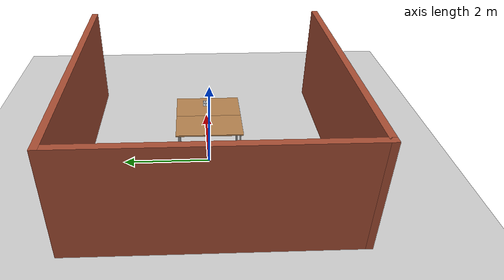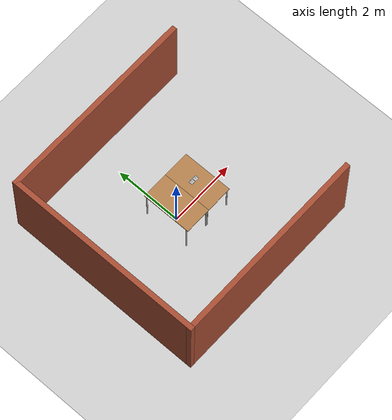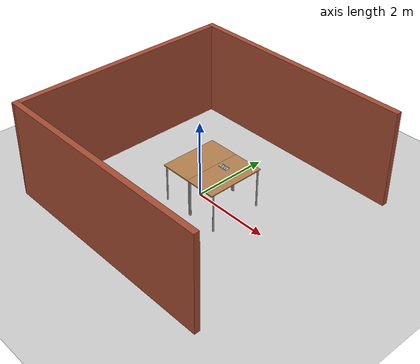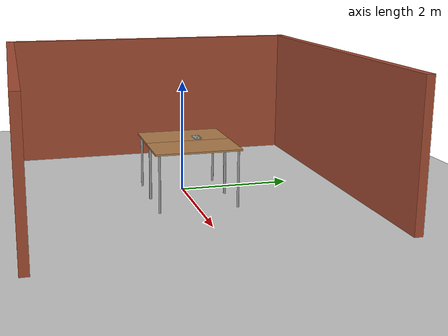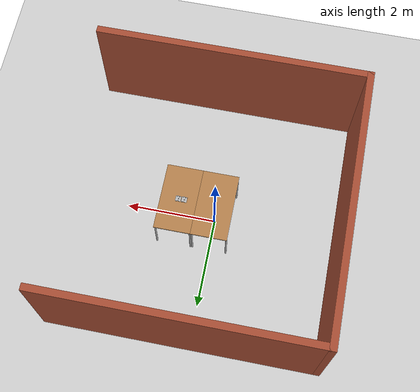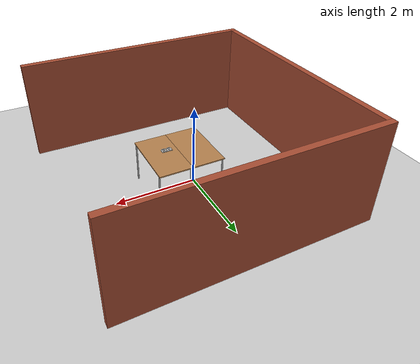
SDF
<sdf version="1.7">
 <world name="default">
  <light name="sun" type="directional">
   <pose>0 0 10 0 -0 0</pose>
   <diffuse>0.8 0.8 0.8 1</diffuse>
   <specular>0.2 0.2 0.2 1</specular>
   <attenuation>
    <range>1000</range>
    <constant>0.9</constant>
    <linear>0.01</linear>
    <quadratic>0.001</quadratic>
   </attenuation>
   <direction>-0.5 0.1 -0.9</direction>
   <spot><inner_angle>0</inner_angle><outer_angle>0</outer_angle><falloff>0</falloff></spot>
  </light>
  <model name="ground_plane">
   <static>1</static>
   <link name="link">
    <collision name="collision">
     <geometry><plane><normal>0 0 1</normal><size>100 100</size></plane></geometry>
     <surface><friction><ode><mu>100</mu><mu2>50</mu2></ode></friction></surface>
    </collision>
    <visual name="visual">
     <cast_shadows>0</cast_shadows>
     <geometry><plane><normal>0 0 1</normal><size>100 100</size></plane></geometry>
     <material>
      <script><uri>file://media/materials/scripts/gazebo.material</uri><name>Gazebo/Grey</name></script>
     </material>
    </visual>
   </link>
  </model>
  <gravity>0 0 -9.8</gravity>
  <magnetic_field>6e-06 2.3e-05 -4.2e-05</magnetic_field>
  <atmosphere type="adiabatic"/>
  <physics type="ode">
   <max_step_size>0.001</max_step_size>
   <real_time_factor>1</real_time_factor>
   <real_time_update_rate>1000</real_time_update_rate>
  </physics>
  <scene><ambient>0.4 0.4 0.4 1</ambient><background>0.7 0.7 0.7 1</background><shadows>1</shadows></scene>
  <audio><device>default</device></audio>
  <spherical_coordinates>
   <surface_model>EARTH_WGS84</surface_model>
   <latitude_deg>0</latitude_deg>
   <longitude_deg>0</longitude_deg>
   <elevation>0</elevation>
   <heading_deg>0</heading_deg>
  </spherical_coordinates>
  <model name="table">
   <static>1</static>
   <link name="link">
    <collision name="surface">
     <pose>0 0 1 0 -0 0</pose>
     <geometry><box><size>1.5 0.8 0.03</size></box></geometry>
     <surface><friction><ode><mu>0.6</mu><mu2>0.6</mu2></ode></friction></surface>
    </collision>
    <visual name="visual1">
     <pose>0 0 1 0 -0 0</pose>
     <geometry><box><size>1.5 0.8 0.03</size></box></geometry>
     <material>
      <script><uri>file://media/materials/scripts/gazebo.material</uri><name>Gazebo/Wood</name></script>
     </material>
    </visual>
    <collision name="front_left_leg">
     <pose>0.68 0.38 0.5 0 -0 0</pose>
     <geometry><cylinder><radius>0.02</radius><length>1</length></cylinder></geometry>
    </collision>
    <visual name="front_left_leg_visual">
     <pose>0.68 0.38 0.5 0 -0 0</pose>
     <geometry><cylinder><radius>0.02</radius><length>1</length></cylinder></geometry>
     <material>
      <script><uri>file://media/materials/scripts/gazebo.material</uri><name>Gazebo/Grey</name></script>
     </material>
    </visual>
    <collision name="front_right_leg">
     <pose>0.68 -0.38 0.5 0 -0 0</pose>
     <geometry><cylinder><radius>0.02</radius><length>1</length></cylinder></geometry>
    </collision>
    <visual name="front_right_leg_visual">
     <pose>0.68 -0.38 0.5 0 -0 0</pose>
     <geometry><cylinder><radius>0.02</radius><length>1</length></cylinder></geometry>
     <material>
      <script><uri>file://media/materials/scripts/gazebo.material</uri><name>Gazebo/Grey</name></script>
     </material>
    </visual>
    <collision name="back_right_leg">
     <pose>-0.68 -0.38 0.5 0 -0 0</pose>
     <geometry><cylinder><radius>0.02</radius><length>1</length></cylinder></geometry>
    </collision>
    <visual name="back_right_leg_visual">
     <pose>-0.68 -0.38 0.5 0 -0 0</pose>
     <geometry><cylinder><radius>0.02</radius><length>1</length></cylinder></geometry>
     <material>
      <script><uri>file://media/materials/scripts/gazebo.material</uri><name>Gazebo/Grey</name></script>
     </material>
    </visual>
    <collision name="back_left_leg">
     <pose>-0.68 0.38 0.5 0 -0 0</pose>
     <geometry><cylinder><radius>0.02</radius><length>1</length></cylinder></geometry>
    </collision>
    <visual name="back_left_leg_visual">
     <pose>-0.68 0.38 0.5 0 -0 0</pose>
     <geometry><cylinder><radius>0.02</radius><length>1</length></cylinder></geometry>
     <material>
      <script><uri>file://media/materials/scripts/gazebo.material</uri><name>Gazebo/Grey</name></script>
     </material>
    </visual>
   </link>
   <pose>0 0 0 0 -0 1.5708</pose>
  </model>
  <model name="table_0">
   <static>1</static>
   <link name="link">
    <collision name="surface">
     <pose>0 0 1 0 -0 0</pose>
     <geometry><box><size>1.5 0.8 0.03</size></box></geometry>
     <surface><friction><ode><mu>0.6</mu><mu2>0.6</mu2></ode></friction></surface>
    </collision>
    <visual name="visual1">
     <pose>0 0 1 0 -0 0</pose>
     <geometry><box><size>1.5 0.8 0.03</size></box></geometry>
     <material>
      <script><uri>file://media/materials/scripts/gazebo.material</uri><name>Gazebo/Wood</name></script>
     </material>
    </visual>
    <collision name="front_left_leg">
     <pose>0.68 0.38 0.5 0 -0 0</pose>
     <geometry><cylinder><radius>0.02</radius><length>1</length></cylinder></geometry>
    </collision>
    <visual name="front_left_leg_visual">
     <pose>0.68 0.38 0.5 0 -0 0</pose>
     <geometry><cylinder><radius>0.02</radius><length>1</length></cylinder></geometry>
     <material>
      <script><uri>file://media/materials/scripts/gazebo.material</uri><name>Gazebo/Grey</name></script>
     </material>
    </visual>
    <collision name="front_right_leg">
     <pose>0.68 -0.38 0.5 0 -0 0</pose>
     <geometry><cylinder><radius>0.02</radius><length>1</length></cylinder></geometry>
    </collision>
    <visual name="front_right_leg_visual">
     <pose>0.68 -0.38 0.5 0 -0 0</pose>
     <geometry><cylinder><radius>0.02</radius><length>1</length></cylinder></geometry>
     <material>
      <script><uri>file://media/materials/scripts/gazebo.material</uri><name>Gazebo/Grey</name></script>
     </material>
    </visual>
    <collision name="back_right_leg">
     <pose>-0.68 -0.38 0.5 0 -0 0</pose>
     <geometry><cylinder><radius>0.02</radius><length>1</length></cylinder></geometry>
    </collision>
    <visual name="back_right_leg_visual">
     <pose>-0.68 -0.38 0.5 0 -0 0</pose>
     <geometry><cylinder><radius>0.02</radius><length>1</length></cylinder></geometry>
     <material>
      <script><uri>file://media/materials/scripts/gazebo.material</uri><name>Gazebo/Grey</name></script>
     </material>
    </visual>
    <collision name="back_left_leg">
     <pose>-0.68 0.38 0.5 0 -0 0</pose>
     <geometry><cylinder><radius>0.02</radius><length>1</length></cylinder></geometry>
    </collision>
    <visual name="back_left_leg_visual">
     <pose>-0.68 0.38 0.5 0 -0 0</pose>
     <geometry><cylinder><radius>0.02</radius><length>1</length></cylinder></geometry>
     <material>
      <script><uri>file://media/materials/scripts/gazebo.material</uri><name>Gazebo/Grey</name></script>
     </material>
    </visual>
   </link>
   <pose>0.8 0 0 0 -0 1.5708</pose>
  </model>
  <model name="building">
   <pose>0.172106 -0.01584 0 0 -0 0</pose>
   <link name="Wall_14">
    <collision name="Wall_14_Collision">
     <geometry><box><size>6 0.15 2.5</size></box></geometry>
     <pose>0 0 1.25 0 -0 0</pose>
    </collision>
    <visual name="Wall_14_Visual">
     <pose>0 0 1.25 0 -0 0</pose>
     <geometry><box><size>6 0.15 2.5</size></box></geometry>
     <material>
      <script><uri>file://media/materials/scripts/gazebo.material</uri><name>Gazebo/Bricks</name></script>
      <ambient>1 1 1 1</ambient>
     </material>
     <meta><layer>0</layer></meta>
    </visual>
    <pose>0 2.925 0 0 -0 0</pose>
   </link>
   <link name="Wall_16">
    <collision name="Wall_16_Collision">
     <geometry><box><size>6 0.15 2.5</size></box></geometry>
     <pose>0 0 1.25 0 -0 0</pose>
    </collision>
    <visual name="Wall_16_Visual">
     <pose>0 0 1.25 0 -0 0</pose>
     <geometry><box><size>6 0.15 2.5</size></box></geometry>
     <material>
      <script><uri>file://media/materials/scripts/gazebo.material</uri><name>Gazebo/Bricks</name></script>
      <ambient>1 1 1 1</ambient>
     </material>
     <meta><layer>0</layer></meta>
    </visual>
    <pose>0 -2.925 0 0 -0 0</pose>
   </link>
   <link name="Wall_9">
    <collision name="Wall_9_Collision">
     <geometry><box><size>6 0.15 2.5</size></box></geometry>
     <pose>0 0 1.25 0 -0 0</pose>
    </collision>
    <visual name="Wall_9_Visual">
     <pose>0 0 1.25 0 -0 0</pose>
     <geometry><box><size>6 0.15 2.5</size></box></geometry>
     <material>
      <script><uri>file://media/materials/scripts/gazebo.material</uri><name>Gazebo/Bricks</name></script>
      <ambient>1 1 1 1</ambient>
     </material>
     <meta><layer>0</layer></meta>
    </visual>
    <pose>-2.925 0 0 0 -0 1.5708</pose>
   </link>
   <static>1</static>
  </model>
  <model name="ateo">
   <pose>0.6 0 1.04 0 0 0</pose>
   <link name="link">
    <inertial>
     <pose>0.121281 0.062056 0.115541 0 0 0</pose>
     <mass>0.8446</mass>
     <inertia>
      <ixx>1.225612e-03</ixx>
      <ixy>1.207283e-04</ixy>
      <ixz>3.276762e-05</ixz>
      <iyy>4.418758e-03</iyy>
      <iyz>-1.262834e-05</iyz>
      <izz>5.586897e-03</izz>
     </inertia>
    </inertial>
    <visual name="visual">
     <geometry>
      <mesh>
       <uri>file:///home/zhibang22/projects/gazebo_ws/tooling_parts/ateo.stl</uri>
       <scale>0.001 0.001 0.001</scale>
      </mesh>
     </geometry>
    </visual>
    <collision name="collision">
     <geometry>
      <mesh>
       <uri>file:///home/zhibang22/projects/gazebo_ws/tooling_parts/ateo.stl</uri>
       <scale>0.001 0.001 0.001</scale>
      </mesh>
     </geometry>
    </collision>
   </link>
   <static>0</static>
  </model>
  <model name="g0101">
   <pose>0.6 0 1.04 0 0 0</pose>
   <link name="link">
    <inertial>
     <pose>0.060839 0.060523 0.112492 0 0 0</pose>
     <mass>0.3079</mass>
     <inertia>
      <ixx>3.682833e-04</ixx>
      <ixy>-7.284331e-14</ixy>
      <ixz>9.581626e-15</ixz>
      <iyy>3.734749e-04</iyy>
      <iyz>-5.319894e-08</iyz>
      <izz>7.384854e-04</izz>
     </inertia>
    </inertial>
    <visual name="visual">
     <geometry>
      <mesh>
       <uri>file:///home/zhibang22/projects/gazebo_ws/tooling_parts/g0101.STL</uri>
       <scale>0.001 0.001 0.001</scale>
      </mesh>
     </geometry>
    </visual>
    <collision name="collision">
     <geometry>
      <mesh>
       <uri>file:///home/zhibang22/projects/gazebo_ws/tooling_parts/g0101.STL</uri>
       <scale>0.001 0.001 0.001</scale>
      </mesh>
     </geometry>
    </collision>
   </link>
   <static>0</static>
  </model>
  <model name="g0201">
   <pose>0.6 0 1.04 0 0 0</pose>
   <link name="link">
    <inertial>
     <pose>0.035839 0.111555 0.121577 0 0 0</pose>
     <mass>0.0017</mass>
     <inertia>
      <ixx>3.445355e-08</ixx>
      <ixy>5.947217e-14</ixy>
      <ixz>2.858178e-16</ixz>
      <iyy>3.490797e-08</iyy>
      <iyz>1.747671e-16</iyz>
      <izz>1.359738e-08</izz>
     </inertia>
    </inertial>
    <visual name="visual">
     <geometry>
      <mesh>
       <uri>file:///home/zhibang22/projects/gazebo_ws/tooling_parts/g0201.STL</uri>
       <scale>0.001 0.001 0.001</scale>
      </mesh>
     </geometry>
    </visual>
    <collision name="collision">
     <geometry>
      <mesh>
       <uri>file:///home/zhibang22/projects/gazebo_ws/tooling_parts/g0201.STL</uri>
       <scale>0.001 0.001 0.001</scale>
      </mesh>
     </geometry>
    </collision>
   </link>
   <static>0</static>
  </model>
  <model name="g0203">
   <pose>0.6 0 1.04 0 0 0</pose>
   <link name="link">
    <inertial>
     <pose>0.060839 0.060555 0.121577 0 0 0</pose>
     <mass>0.0017</mass>
     <inertia>
      <ixx>3.445355e-08</ixx>
      <ixy>5.910511e-14</ixy>
      <ixz>1.516769e-15</ixz>
      <iyy>3.490797e-08</iyy>
      <iyz>1.056238e-15</iyz>
      <izz>1.359738e-08</izz>
     </inertia>
    </inertial>
    <visual name="visual">
     <geometry>
      <mesh>
       <uri>file:///home/zhibang22/projects/gazebo_ws/tooling_parts/g0203.STL</uri>
       <scale>0.001 0.001 0.001</scale>
      </mesh>
     </geometry>
    </visual>
    <collision name="collision">
     <geometry>
      <mesh>
       <uri>file:///home/zhibang22/projects/gazebo_ws/tooling_parts/g0203.STL</uri>
       <scale>0.001 0.001 0.001</scale>
      </mesh>
     </geometry>
    </collision>
   </link>
   <static>0</static>
  </model>
  <model name="g0204">
   <pose>0.6 0 1.04 0 0 0</pose>
   <link name="link">
    <inertial>
     <pose>0.085839 0.111555 0.121577 0 0 0</pose>
     <mass>0.0017</mass>
     <inertia>
      <ixx>3.445356e-08</ixx>
      <ixy>5.915263e-14</ixy>
      <ixz>8.103467e-16</ixz>
      <iyy>3.490797e-08</iyy>
      <iyz>1.863271e-16</iyz>
      <izz>1.359738e-08</izz>
     </inertia>
    </inertial>
    <visual name="visual">
     <geometry>
      <mesh>
       <uri>file:///home/zhibang22/projects/gazebo_ws/tooling_parts/g0204.STL</uri>
       <scale>0.001 0.001 0.001</scale>
      </mesh>
     </geometry>
    </visual>
    <collision name="collision">
     <geometry>
      <mesh>
       <uri>file:///home/zhibang22/projects/gazebo_ws/tooling_parts/g0204.STL</uri>
       <scale>0.001 0.001 0.001</scale>
      </mesh>
     </geometry>
    </collision>
   </link>
   <static>0</static>
  </model>
  <model name="g0301">
   <pose>0.6 0 1.04 0 0 0</pose>
   <link name="link">
    <inertial>
     <pose>0.060839 0.060555 0.121975 0 0 0</pose>
     <mass>0.0023</mass>
     <inertia>
      <ixx>5.419094e-08</ixx>
      <ixy>1.259586e-16</ixy>
      <ixz>-6.752853e-14</ixz>
      <iyy>5.419094e-08</iyy>
      <iyz>-2.256899e-13</iyz>
      <izz>2.431805e-08</izz>
     </inertia>
    </inertial>
    <visual name="visual">
     <geometry>
      <mesh>
       <uri>file:///home/zhibang22/projects/gazebo_ws/tooling_parts/g0301.STL</uri>
       <scale>0.001 0.001 0.001</scale>
      </mesh>
     </geometry>
    </visual>
    <collision name="collision">
     <geometry>
      <mesh>
       <uri>file:///home/zhibang22/projects/gazebo_ws/tooling_parts/g0301.STL</uri>
       <scale>0.001 0.001 0.001</scale>
      </mesh>
     </geometry>
    </collision>
   </link>
   <static>0</static>
  </model>
  <model name="g0401">
   <pose>0.6 0 1.04 0 0 0</pose>
   <link name="link">
    <inertial>
     <pose>0.060839 0.009555 0.121940 0 0 0</pose>
     <mass>0.0051</mass>
     <inertia>
      <ixx>1.162939e-07</ixx>
      <ixy>2.096388e-13</ixy>
      <ixz>8.919123e-16</ixz>
      <iyy>2.088920e-07</iyy>
      <iyz>2.539362e-16</iyz>
      <izz>1.413710e-07</izz>
     </inertia>
    </inertial>
    <visual name="visual">
     <geometry>
      <mesh>
       <uri>file:///home/zhibang22/projects/gazebo_ws/tooling_parts/g0401.STL</uri>
       <scale>0.001 0.001 0.001</scale>
      </mesh>
     </geometry>
    </visual>
    <collision name="collision">
     <geometry>
      <mesh>
       <uri>file:///home/zhibang22/projects/gazebo_ws/tooling_parts/g0401.STL</uri>
       <scale>0.001 0.001 0.001</scale>
      </mesh>
     </geometry>
    </collision>
   </link>
   <static>0</static>
  </model>
  <model name="g0501">
   <pose>0.6 0 1.04 0 0 0</pose>
   <link name="link">
    <inertial>
     <pose>0.060839 0.111555 0.124000 0 0 0</pose>
     <mass>0.0408</mass>
     <inertia>
      <ixx>1.697188e-06</ixx>
      <ixy>-3.188946e-11</ixy>
      <ixz>8.431507e-14</ixz>
      <iyy>1.626952e-05</iyy>
      <iyz>1.832664e-15</iyz>
      <izz>1.643744e-05</izz>
     </inertia>
    </inertial>
    <visual name="visual">
     <geometry>
      <mesh>
       <uri>file:///home/zhibang22/projects/gazebo_ws/tooling_parts/g0501.STL</uri>
       <scale>0.001 0.001 0.001</scale>
      </mesh>
     </geometry>
    </visual>
    <collision name="collision">
     <geometry>
      <mesh>
       <uri>file:///home/zhibang22/projects/gazebo_ws/tooling_parts/g0501.STL</uri>
       <scale>0.001 0.001 0.001</scale>
      </mesh>
     </geometry>
    </collision>
   </link>
   <static>0</static>
  </model>
  <model name="g0601">
   <pose>0.6 0 1.04 0 0 0</pose>
   <link name="link">
    <inertial>
     <pose>0.060839 0.060555 0.124000 0 0 0</pose>
     <mass>0.0228</mass>
     <inertia>
      <ixx>9.456258e-07</ixx>
      <ixy>-1.035972e-10</ixy>
      <ixz>2.298131e-13</ixz>
      <iyy>3.745820e-06</iyy>
      <iyz>1.857071e-15</iyz>
      <izz>3.837297e-06</izz>
     </inertia>
    </inertial>
    <visual name="visual">
     <geometry>
      <mesh>
       <uri>file:///home/zhibang22/projects/gazebo_ws/tooling_parts/g0601.STL</uri>
       <scale>0.001 0.001 0.001</scale>
      </mesh>
     </geometry>
    </visual>
    <collision name="collision">
     <geometry>
      <mesh>
       <uri>file:///home/zhibang22/projects/gazebo_ws/tooling_parts/g0601.STL</uri>
       <scale>0.001 0.001 0.001</scale>
      </mesh>
     </geometry>
    </collision>
   </link>
   <static>0</static>
  </model>
  <model name="g0701">
   <pose>0.6 0 1.04 0 0 0</pose>
   <link name="link">
    <inertial>
     <pose>0.060839 0.009555 0.124000 0 0 0</pose>
     <mass>0.0377</mass>
     <inertia>
      <ixx>1.553356e-06</ixx>
      <ixy>6.204517e-11</ixy>
      <ixz>8.480480e-14</ixz>
      <iyy>1.659819e-05</iyy>
      <iyz>1.942913e-15</iyz>
      <izz>1.674104e-05</izz>
     </inertia>
    </inertial>
    <visual name="visual">
     <geometry>
      <mesh>
       <uri>file:///home/zhibang22/projects/gazebo_ws/tooling_parts/g0701.STL</uri>
       <scale>0.001 0.001 0.001</scale>
      </mesh>
     </geometry>
    </visual>
    <collision name="collision">
     <geometry>
      <mesh>
       <uri>file:///home/zhibang22/projects/gazebo_ws/tooling_parts/g0701.STL</uri>
       <scale>0.001 0.001 0.001</scale>
      </mesh>
     </geometry>
    </collision>
   </link>
   <static>0</static>
  </model>
  <model name="g0801">
   <pose>0.6 0 1.04 0 0 0</pose>
   <link name="link">
    <inertial>
     <pose>0.035839 0.111555 0.124000 0 0 0</pose>
     <mass>0.0151</mass>
     <inertia>
      <ixx>5.966443e-07</ixx>
      <ixy>2.743851e-12</ixy>
      <ixz>-1.614315e-11</ixz>
      <iyy>1.335190e-06</iyy>
      <iyz>1.994090e-14</iyz>
      <izz>1.367014e-06</izz>
     </inertia>
    </inertial>
    <visual name="visual">
     <geometry>
      <mesh>
       <uri>file:///home/zhibang22/projects/gazebo_ws/tooling_parts/g0801.STL</uri>
       <scale>0.001 0.001 0.001</scale>
      </mesh>
     </geometry>
    </visual>
    <collision name="collision">
     <geometry>
      <mesh>
       <uri>file:///home/zhibang22/projects/gazebo_ws/tooling_parts/g0801.STL</uri>
       <scale>0.001 0.001 0.001</scale>
      </mesh>
     </geometry>
    </collision>
   </link>
   <static>0</static>
  </model>
  <model name="g0802">
   <pose>0.6 0 1.04 0 0 0</pose>
   <link name="link">
    <inertial>
     <pose>0.085839 0.111555 0.124000 0 0 0</pose>
     <mass>0.0151</mass>
     <inertia>
      <ixx>5.966443e-07</ixx>
      <ixy>2.743941e-12</ixy>
      <ixz>-1.613940e-11</ixz>
      <iyy>1.335190e-06</iyy>
      <iyz>1.997946e-14</iyz>
      <izz>1.367014e-06</izz>
     </inertia>
    </inertial>
    <visual name="visual">
     <geometry>
      <mesh>
       <uri>file:///home/zhibang22/projects/gazebo_ws/tooling_parts/g0802.STL</uri>
       <scale>0.001 0.001 0.001</scale>
      </mesh>
     </geometry>
    </visual>
    <collision name="collision">
     <geometry>
      <mesh>
       <uri>file:///home/zhibang22/projects/gazebo_ws/tooling_parts/g0802.STL</uri>
       <scale>0.001 0.001 0.001</scale>
      </mesh>
     </geometry>
    </collision>
   </link>
   <static>0</static>
  </model>
  <model name="g1101">
   <pose>0.6 0 1.04 0 0 0</pose>
   <link name="link">
    <inertial>
     <pose>0.190839 0.060642 0.112412 0 0 0</pose>
     <mass>0.3033</mass>
     <inertia>
      <ixx>3.599853e-04</ixx>
      <ixy>1.537863e-13</ixy>
      <ixz>-2.075557e-14</ixz>
      <iyy>3.709045e-04</iyy>
      <iyz>-9.550492e-08</iyz>
      <izz>7.277663e-04</izz>
     </inertia>
    </inertial>
    <visual name="visual">
     <geometry>
      <mesh>
       <uri>file:///home/zhibang22/projects/gazebo_ws/tooling_parts/g1101.STL</uri>
       <scale>0.001 0.001 0.001</scale>
      </mesh>
     </geometry>
    </visual>
    <collision name="collision">
     <geometry>
      <mesh>
       <uri>file:///home/zhibang22/projects/gazebo_ws/tooling_parts/g1101.STL</uri>
       <scale>0.001 0.001 0.001</scale>
      </mesh>
     </geometry>
    </collision>
   </link>
   <static>0</static>
  </model>
  <model name="g1201">
   <pose>0.6 0 1.04 0 0 0</pose>
   <link name="link">
    <inertial>
     <pose>0.190839 0.060555 0.123000 0 0 0</pose>
     <mass>0.0225</mass>
     <inertia>
      <ixx>9.371816e-07</ixx>
      <ixy>-1.041021e-10</ixy>
      <ixz>2.180874e-13</ixz>
      <iyy>3.737451e-06</iyy>
      <iyz>4.023171e-15</iyz>
      <izz>3.830689e-06</izz>
     </inertia>
    </inertial>
    <visual name="visual">
     <geometry>
      <mesh>
       <uri>file:///home/zhibang22/projects/gazebo_ws/tooling_parts/g1201.STL</uri>
       <scale>0.001 0.001 0.001</scale>
      </mesh>
     </geometry>
    </visual>
    <collision name="collision">
     <geometry>
      <mesh>
       <uri>file:///home/zhibang22/projects/gazebo_ws/tooling_parts/g1201.STL</uri>
       <scale>0.001 0.001 0.001</scale>
      </mesh>
     </geometry>
    </collision>
   </link>
   <static>0</static>
  </model>
  <model name="g1301">
   <pose>0.6 0 1.04 0 0 0</pose>
   <link name="link">
    <inertial>
     <pose>0.190808 0.011055 0.123000 0 0 0</pose>
     <mass>0.0372</mass>
     <inertia>
      <ixx>1.538136e-06</ixx>
      <ixy>8.264784e-11</ixy>
      <ixz>1.039168e-13</ixz>
      <iyy>1.656419e-05</iyy>
      <iyz>4.139003e-15</iyz>
      <izz>1.671116e-05</izz>
     </inertia>
    </inertial>
    <visual name="visual">
     <geometry>
      <mesh>
       <uri>file:///home/zhibang22/projects/gazebo_ws/tooling_parts/g1301.STL</uri>
       <scale>0.001 0.001 0.001</scale>
      </mesh>
     </geometry>
    </visual>
    <collision name="collision">
     <geometry>
      <mesh>
       <uri>file:///home/zhibang22/projects/gazebo_ws/tooling_parts/g1301.STL</uri>
       <scale>0.001 0.001 0.001</scale>
      </mesh>
     </geometry>
    </collision>
   </link>
   <static>0</static>
  </model>
  <model name="g1401">
   <pose>0.6 0 1.04 0 0 0</pose>
   <link name="link">
    <inertial>
     <pose>0.165780 0.110055 0.124000 0 0 0</pose>
     <mass>0.0149</mass>
     <inertia>
      <ixx>5.907780e-07</ixx>
      <ixy>1.041662e-11</ixy>
      <ixz>-7.235164e-13</ixz>
      <iyy>1.329378e-06</iyy>
      <iyz>2.448936e-15</iyz>
      <izz>1.363319e-06</izz>
     </inertia>
    </inertial>
    <visual name="visual">
     <geometry>
      <mesh>
       <uri>file:///home/zhibang22/projects/gazebo_ws/tooling_parts/g1401.STL</uri>
       <scale>0.001 0.001 0.001</scale>
      </mesh>
     </geometry>
    </visual>
    <collision name="collision">
     <geometry>
      <mesh>
       <uri>file:///home/zhibang22/projects/gazebo_ws/tooling_parts/g1401.STL</uri>
       <scale>0.001 0.001 0.001</scale>
      </mesh>
     </geometry>
    </collision>
   </link>
   <static>0</static>
  </model>
  <model name="g1402">
   <pose>0.6 0 1.04 0 0 0</pose>
   <link name="link">
    <inertial>
     <pose>0.215889 0.110055 0.124000 0 0 0</pose>
     <mass>0.0149</mass>
     <inertia>
      <ixx>5.907781e-07</ixx>
      <ixy>1.041633e-11</ixy>
      <ixz>-7.236232e-13</ixz>
      <iyy>1.329378e-06</iyy>
      <iyz>2.991846e-15</iyz>
      <izz>1.363319e-06</izz>
     </inertia>
    </inertial>
    <visual name="visual">
     <geometry>
      <mesh>
       <uri>file:///home/zhibang22/projects/gazebo_ws/tooling_parts/g1402.STL</uri>
       <scale>0.001 0.001 0.001</scale>
      </mesh>
     </geometry>
    </visual>
    <collision name="collision">
     <geometry>
      <mesh>
       <uri>file:///home/zhibang22/projects/gazebo_ws/tooling_parts/g1402.STL</uri>
       <scale>0.001 0.001 0.001</scale>
      </mesh>
     </geometry>
    </collision>
   </link>
   <static>0</static>
  </model>
 </world>
</sdf>
